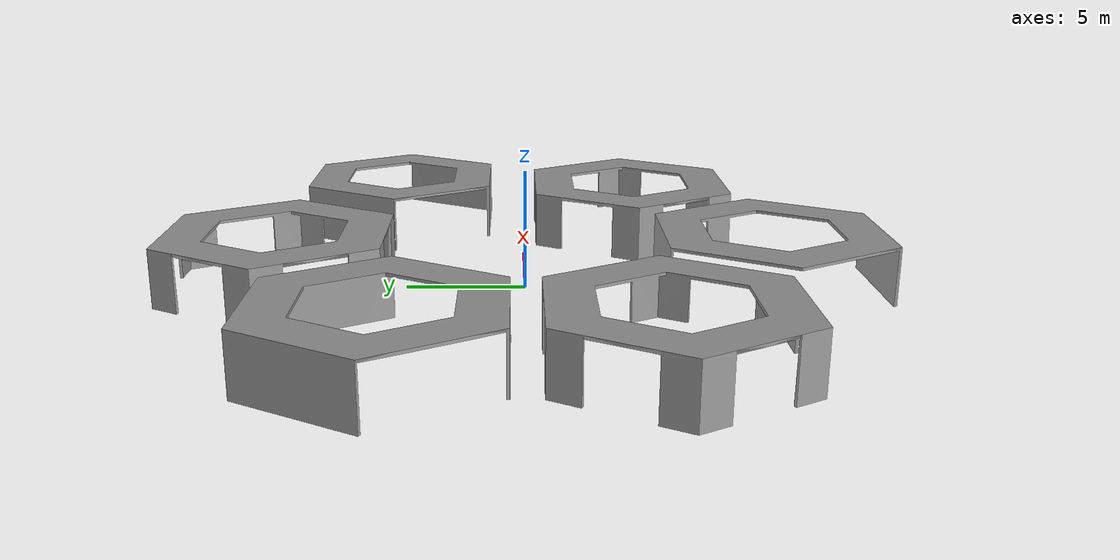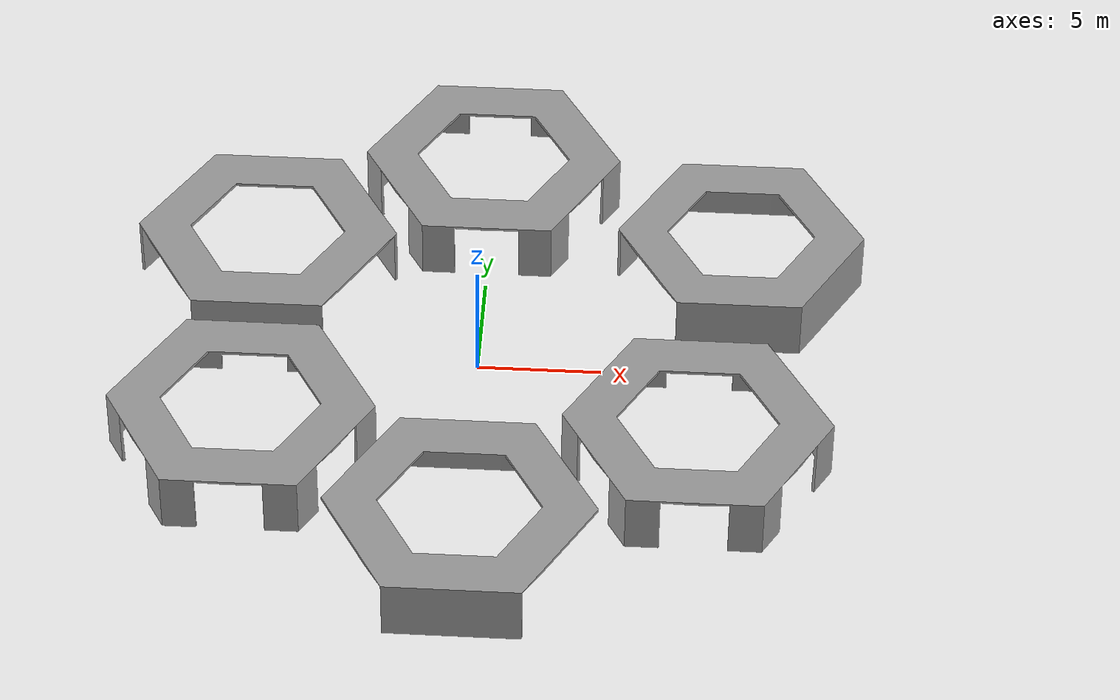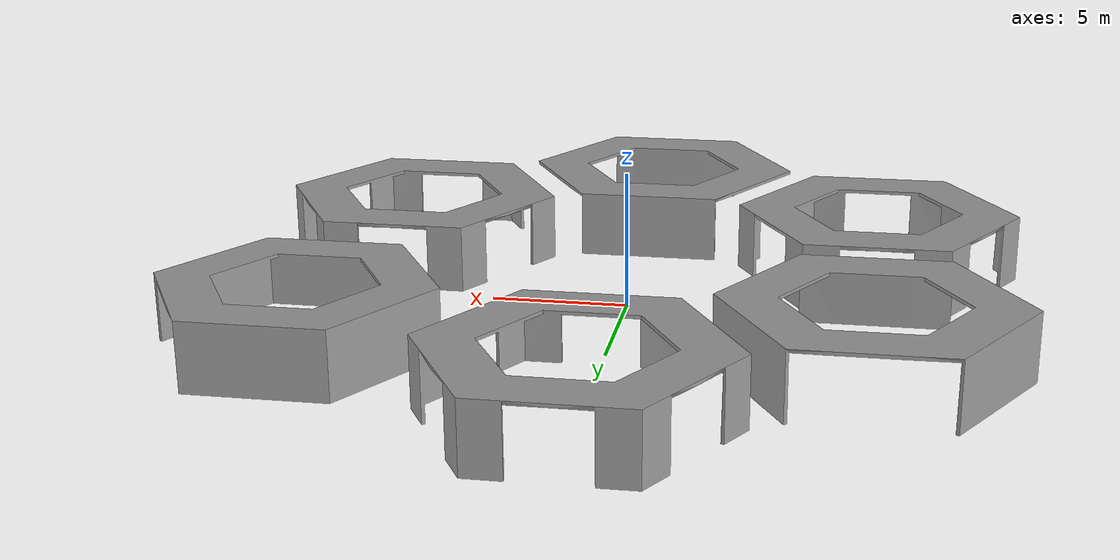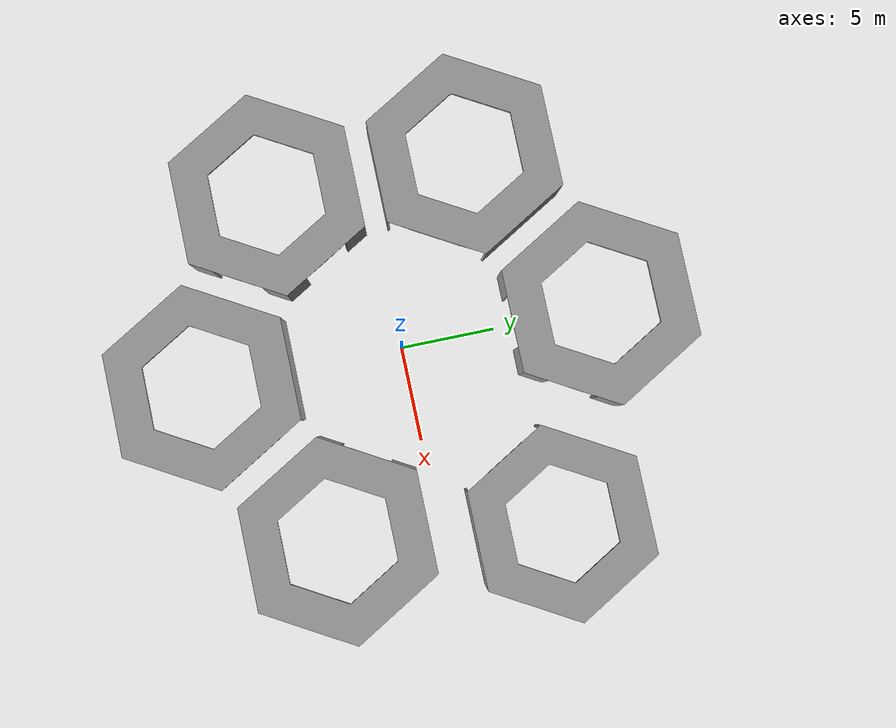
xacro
<?xml version="1.0"?>
<robot name="robot" xmlns:xacro="http://www.ros.org/wiki/xacro">
  <link name="rooms_link">
    <inertial>
      <origin xyz="0 0 0" rpy="0 0 0"/>
      <mass value="1"/>
      <inertia ixx="1" ixy="0" ixz="0" iyy="1" iyz="0" izz="1"/>
    </inertial>
    <visual>
      <origin xyz="0 0 0" rpy="0 0 0"/>
      <geometry>
        <mesh filename="package://boxer_gazebo/meshes/boxer_world_rooms.dae"/>
      </geometry>
      <material name="Gray" />
    </visual>
    <collision>
      <origin xyz="0 0 0" rpy="0 0 0"/>
      <geometry>
        <mesh filename="package://boxer_gazebo/meshes/boxer_world_rooms.dae"/>
      </geometry>
    </collision>
  </link>
  <gazebo> <static>true</static></gazebo>
</robot>
